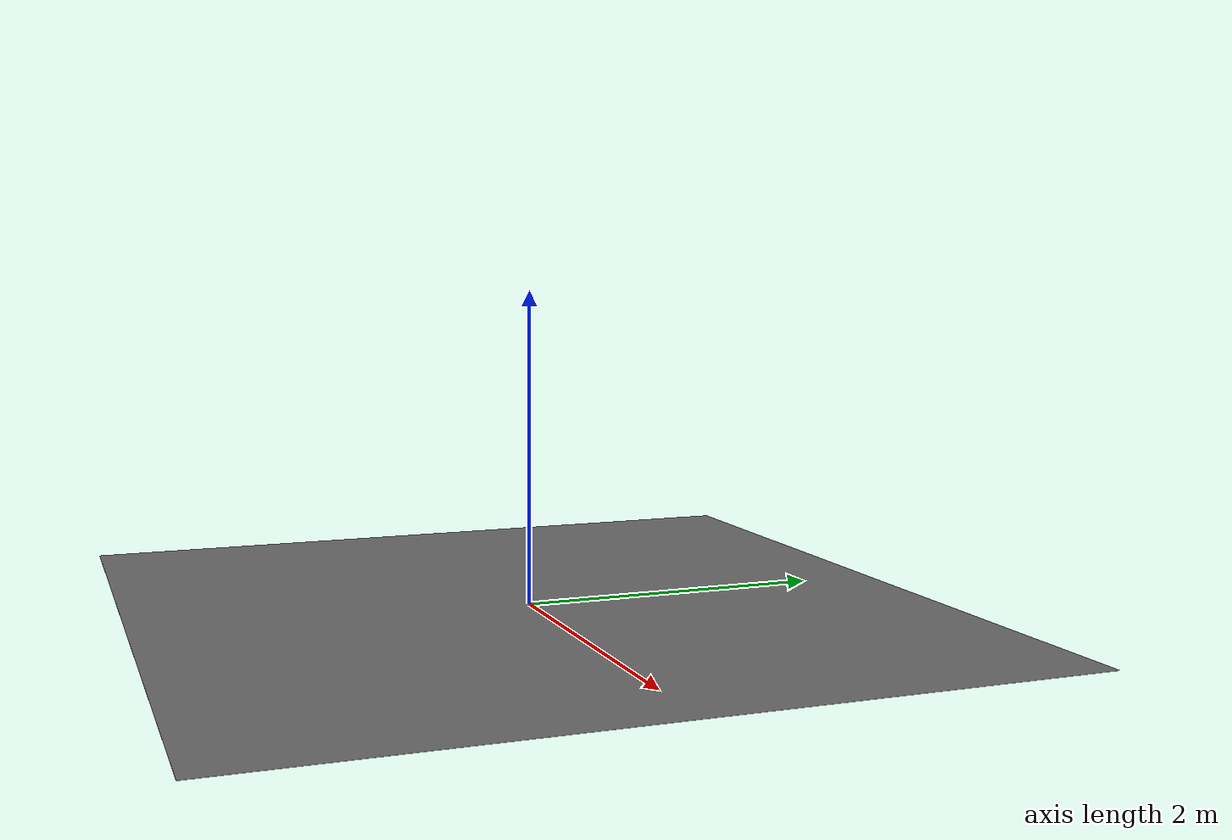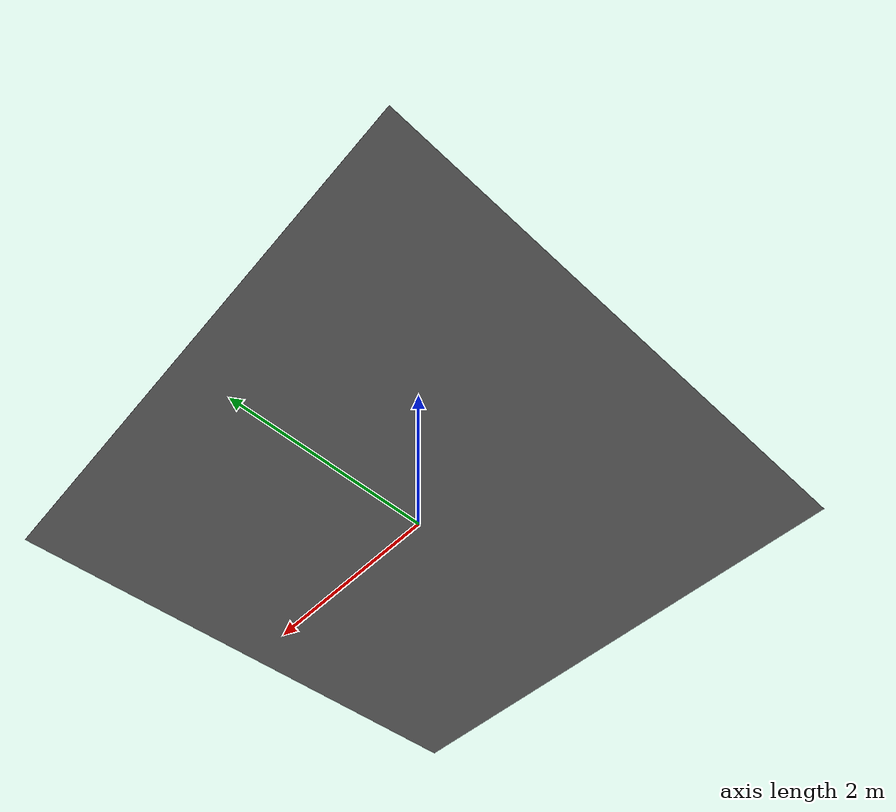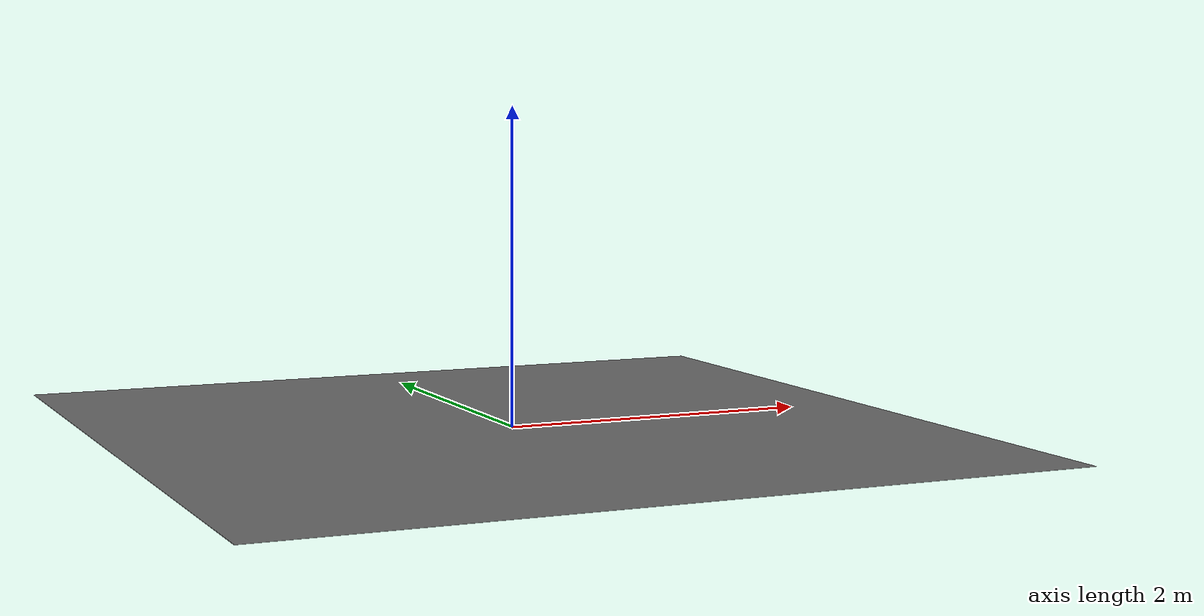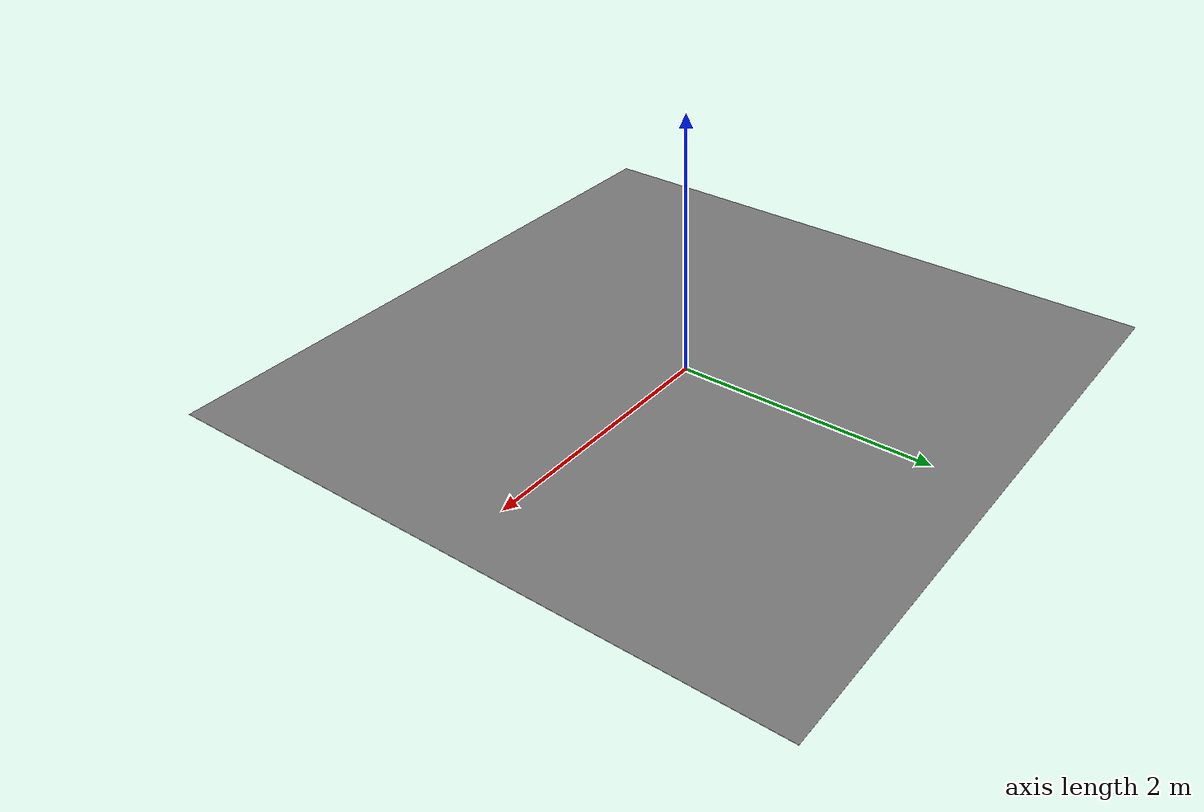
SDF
<?xml version='1.0'?>
<sdf version='1.6'>
  <model name='orchard_ground'>
    <link name='link'>
      <self_collide>0</self_collide>
      <enable_wind>0</enable_wind>
      <kinematic>0</kinematic>
      <pose frame=''>0 0 0 0 0 0</pose>
      <gravity>1</gravity>
      <inertial>
        <mass>1</mass>
        <pose frame=''>0 0 0 0 0 0</pose>
        <inertia>
          <ixx>1</ixx>
          <ixy>0</ixy>
          <ixz>0</ixz>
          <iyy>1</iyy>
          <iyz>0</iyz>
          <izz>1</izz>
        </inertia>
      </inertial>
      <visual name='visual_1'>
        <pose frame=''>0 0 0 0 0 0</pose>
        <cast_shadows>0</cast_shadows>
        <geometry>
          <box>
            <size>5 5 0.002</size>
          </box>
        </geometry>
        <material>
          <script>
            <uri>model://mud_box/materials/scripts</uri>
            <uri>model://mud_box/materials/textures</uri>
            <name>vrc/mud</name>
          </script>
          <shader type='pixel'>
            <normal_map>__default__</normal_map>
          </shader>
          <ambient>0.5 0.5 0.5 1</ambient>
          <diffuse>0.5 0.5 0.5 1</diffuse>
          <specular>0.2 0.2 0.2 1</specular>
          <emissive>0 0 0 1</emissive>
        </material>
        <transparency>0</transparency>
      </visual>
      <visual name='visual_3'>
        <pose frame=''>0 0 0 0 0 0</pose>
        <cast_shadows>0</cast_shadows>
        <geometry>
          <box>
            <!--              TAMANHO DA TERRA              -->
            <size>5 5 0.002</size>
          </box>
        </geometry>
        <material>
          <script>
            <uri>model://mud_box/materials/scripts</uri>
            <uri>model://mud_box/materials/textures</uri>
            <name>vrc/mud</name>
          </script>
          <shader type='pixel'>
            <normal_map>__default__</normal_map>
          </shader>
          <ambient>0.5 0.5 0.5 1</ambient>
          <diffuse>0.5 0.5 0.5 1</diffuse>
          <specular>0.2 0.2 0.2 1</specular>
          <emissive>0 0 0 1</emissive>
        </material>
        <transparency>0</transparency>
      </visual>
      <visual name='visual_2'>
        <pose frame=''>0 0 0 0 0 0</pose>
        <cast_shadows>0</cast_shadows>
        <geometry>
          <box>
            <!--              TAMANHO DA TERRA              -->
            <size>5 5 0.002</size>
          </box>
        </geometry>
        <material>
          <script>
            <uri>model://mud_box/materials/scripts</uri>
            <uri>model://mud_box/materials/textures</uri>
            <name>vrc/mud</name>
          </script>
          <shader type='pixel'>
            <normal_map>__default__</normal_map>
          </shader>
          <ambient>0.5 0.5 0.5 1</ambient>
          <diffuse>0.5 0.5 0.5 1</diffuse>
          <specular>0.2 0.2 0.2 1</specular>
          <emissive>0 0 0 1</emissive>
        </material>
        <transparency>0</transparency>
      </visual>
      <visual name='visual_4'>
        <pose frame=''>0 0 0 0 0 0</pose>
        <cast_shadows>0</cast_shadows>
        <geometry>
          <box>
            <size>5 5 0.002</size>
          </box>
        </geometry>
        <material>
          <script>
            <uri>model://mud_box/materials/scripts</uri>
            <uri>model://mud_box/materials/textures</uri>
            <name>vrc/mud</name>
          </script>
          <shader type='pixel'>
            <normal_map>__default__</normal_map>
          </shader>
          <ambient>0.5 0.5 0.5 1</ambient>
          <diffuse>0.5 0.5 0.5 1</diffuse>
          <specular>0.2 0.2 0.2 1</specular>
          <emissive>0 0 0 1</emissive>
        </material>
        <transparency>0</transparency>
      </visual>
      <collision name='collision'>
        <laser_retro>0</laser_retro>
        <max_contacts>10</max_contacts>
        <pose frame=''>0 0 0 0 0 0</pose>
        <geometry>
          <box>
            <size>5 5 0.002</size>
          </box>
        </geometry>
        <surface>
          <friction>
            <ode>
              <mu>1</mu>
              <mu2>1</mu2>
              <fdir1>0 0 0</fdir1>
              <slip1>0</slip1>
              <slip2>0</slip2>
            </ode>
            <torsional>
              <coefficient>1</coefficient>
              <patch_radius>0</patch_radius>
              <surface_radius>0</surface_radius>
              <use_patch_radius>1</use_patch_radius>
              <ode>
                <slip>0</slip>
              </ode>
            </torsional>
          </friction>
          <bounce>
            <restitution_coefficient>0</restitution_coefficient>
            <threshold>1e+06</threshold>
          </bounce>
          <contact>
            <collide_without_contact>0</collide_without_contact>
            <collide_without_contact_bitmask>1</collide_without_contact_bitmask>
            <collide_bitmask>1</collide_bitmask>
            <ode>
              <soft_cfm>0</soft_cfm>
              <soft_erp>0.2</soft_erp>
              <kp>1e+13</kp>
              <kd>1</kd>
              <max_vel>0.01</max_vel>
              <min_depth>0</min_depth>
            </ode>
            <bullet>
              <split_impulse>1</split_impulse>
              <split_impulse_penetration_threshold>-0.01</split_impulse_penetration_threshold>
              <soft_cfm>0</soft_cfm>
              <soft_erp>0.2</soft_erp>
              <kp>1e+13</kp>
              <kd>1</kd>
            </bullet>
          </contact>
        </surface>
      </collision>
    </link>
    <static>1</static>
    <allow_auto_disable>1</allow_auto_disable>
  </model>
</sdf>
